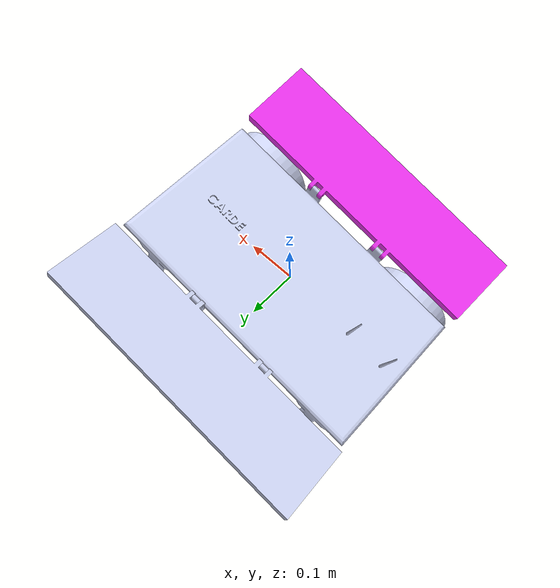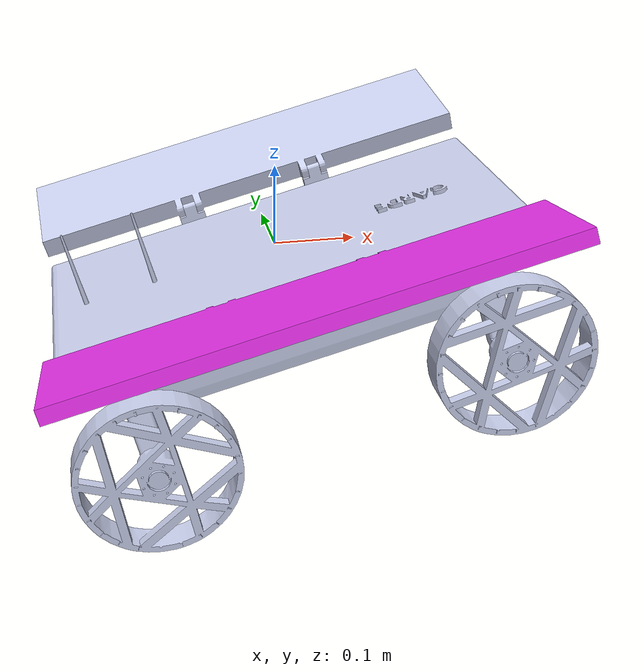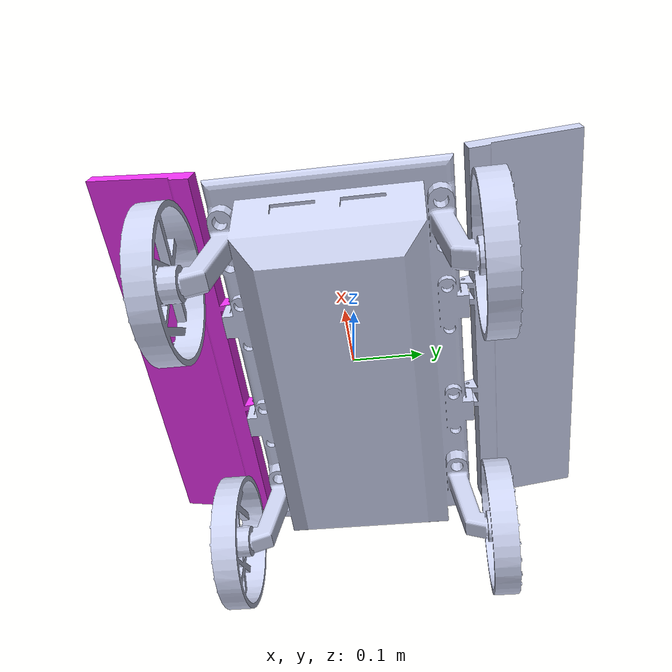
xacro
<?xml version="1.0" ?>

<robot name="omni_robot" xmlns:xacro="http://ros.org/wiki/xacro">
  <xacro:include filename="$(find robot_description)/robot/parts/lrf/lrf.xacro"/>
  <xacro:include filename="$(find robot_description)/robot/parts/camera/camera.xacro"/>
  <xacro:include filename="$(find robot_description)/robot/parts/imu/imu.urdf.xacro"/>

  <xacro:arg name="robot_name" default="robot_1"/>

  <link name="$(arg robot_name)_base_link">
    <inertial>
      <origin rpy="0.0 0 0" xyz="0.0172135177936195 -1.14385581850528E-05 -0.0536201606696958"/>
      <mass value="7.289342987569"/>
      <inertia ixx="0.145206537433384" ixy="1.43923471773063E-06" ixz="-0.0870870676509049" iyy="0.393381877550795" iyz="8.4523238199881E-07" izz="0.448115668671779"/>
    </inertial>
    <visual>
      <origin rpy="0 0 0" xyz="0 0 0"/>
      <geometry>
        <mesh filename="file:///home/ros2/multi_space_ros/src/robot_description/meshes/base_link.stl"/>
      </geometry>
      <material name="">
        <color rgba="0.792156862745098 0.819607843137255 0.933333333333333 1"/>
      </material>
    </visual>
    <collision>
      <origin rpy="0 0 0" xyz="0 0 0"/>
      <geometry>
        <mesh filename="file:///home/ros2/multi_space_ros/src/robot_description/meshes/base_link.stl"/>
      </geometry>
    </collision>
  </link>
  <link name="$(arg robot_name)_Left_front_wheel_link">
    <inertial>
      <origin rpy="0 0 0" xyz="4.10879071321979E-08 1.59579960877509E-08 -0.0134913589136655"/>
      <mass value="0.301609877533069"/>
      <inertia ixx="0.00092337705809606" ixy="-1.11287629204213E-10" ixz="-9.28718015940215E-11" iyy="0.000923377144551089" iyz="-3.60526237294195E-11" izz="0.00178709216193593"/>
    </inertial>
    <visual>
      <origin rpy="0 0 0" xyz="0 0 0"/>
      <geometry>
        <mesh filename="file:///home/ros2/multi_space_ros/src/robot_description/meshes/Left_front_wheel_link.stl"/>
      </geometry>
      <material name="">
        <color rgba="0.792156862745098 0.819607843137255 0.933333333333333 1"/>
      </material>
    </visual>
    <collision>
      <origin rpy="0 0 0" xyz="0 0 0"/>
      <geometry>
        <mesh filename="file:///home/ros2/multi_space_ros/src/robot_description/meshes/Left_front_wheel_link.stl"/>
      </geometry>
    </collision>
  </link>
  <joint name="$(arg robot_name)_Left_front_wheel_joint" type="continuous">
    <origin rpy="-1.5708 0 0" xyz="0.24547 0.20957 -0.081274"/>
    <parent link="$(arg robot_name)_base_link"/>
    <child link="$(arg robot_name)_Left_front_wheel_link"/>
    <axis xyz="0 0 -1"/>
    <limit effort="10" velocity="10"/>
    <dynamics damping="0.1" friction="0.1"/>
  </joint>
  <link name="$(arg robot_name)_Left_back_wheel_link">
    <inertial>
      <origin rpy="0 0 0" xyz="-4.6774E-09 4.3829E-08 -0.013491"/>
      <mass value="0.30161"/>
      <inertia ixx="0.00092338" ixy="7.4328E-11" ixz="1.0556E-11" iyy="0.00092338" iyz="-9.9063E-11" izz="0.0017871"/>
    </inertial>
    <visual>
      <origin rpy="0 0 0" xyz="0 0 0"/>
      <geometry>
        <mesh filename="file:///home/ros2/multi_space_ros/src/robot_description/meshes/Left_back_wheel_link.stl"/>
      </geometry>
      <material name="">
        <color rgba="0.79216 0.81961 0.93333 1"/>
      </material>
    </visual>
    <collision>
      <origin rpy="0 0 0" xyz="0 0 0"/>
      <geometry>
        <mesh filename="file:///home/ros2/multi_space_ros/src/robot_description/meshes/Left_back_wheel_link.stl"/>
      </geometry>
    </collision>
  </link>
  <joint name="$(arg robot_name)_Left_back_wheel_joint" type="continuous">
    <origin rpy="-1.5708 -0.2606 0" xyz="-0.17058 0.20957 -0.19222"/>
    <parent link="$(arg robot_name)_base_link"/>
    <child link="$(arg robot_name)_Left_back_wheel_link"/>
    <axis xyz="0 0 -1"/>
    <limit effort="10" velocity="10"/>
    <dynamics damping="0.1" friction="0.1"/>
  </joint>
  <link name="$(arg robot_name)_right_back_wheel_link">
    <inertial>
      <origin rpy="0 0 0" xyz="-4.33303539160157E-08 -8.08419348130585E-09 0.0134913589136655"/>
      <mass value="0.301609877533068"/>
      <inertia ixx="0.000923376982423818" ixy="1.07889777166057E-11" ixz="-9.79312028416197E-11" iyy="0.000923377220223332" iyz="-1.8287775345518E-11" izz="0.00178709216193593"/>
    </inertial>
    <visual>
      <origin rpy="0 0 0" xyz="0 0 0"/>
      <geometry>
        <mesh filename="file:///home/ros2/multi_space_ros/src/robot_description/meshes/right_back_wheel_link.stl"/>
      </geometry>
      <material name="">
        <color rgba="0.792156862745098 0.819607843137255 0.933333333333333 1"/>
      </material>
    </visual>
    <collision>
      <origin rpy="0 0 0" xyz="0 0 0"/>
      <geometry>
        <mesh filename="file:///home/ros2/multi_space_ros/src/robot_description/meshes/right_back_wheel_link.stl"/>
      </geometry>
    </collision>
  </link>
  <joint name="$(arg robot_name)_right_back_wheel_joint" type="continuous">
    <origin rpy="-1.5708 -0.2606 0" xyz="-0.17058 -0.20959 -0.19222"/>
    <parent link="$(arg robot_name)_base_link"/>
    <child link="$(arg robot_name)_right_back_wheel_link"/>
    <axis xyz="0 0 1"/>
    <limit effort="10" velocity="10"/>
    <dynamics damping="0.1" friction="0.1"/>
  </joint>
  <link name="$(arg robot_name)_right_front_wheel_link">
    <inertial>
      <origin rpy="0 0 0" xyz="3.59983871878189E-08 2.54359955841055E-08 0.0134913589136655"/>
      <mass value="0.301609877533068"/>
      <inertia ixx="0.00092337701568607" ixy="-8.31851667065812E-11" ixz="8.13532326388978E-11" iyy="0.000923377186961082" iyz="5.75031720480376E-11" izz="0.00178709216193594"/>
    </inertial>
    <visual>
      <origin rpy="0 0 0" xyz="0 0 0"/>
      <geometry>
        <mesh filename="file:///home/ros2/multi_space_ros/src/robot_description/meshes/right_front_wheel_link.stl"/>
      </geometry>
      <material name="">
        <color rgba="0.792156862745098 0.819607843137255 0.933333333333333 1"/>
      </material>
    </visual>
    <collision>
      <origin rpy="0 0 0" xyz="0 0 0"/>
      <geometry>
        <mesh filename="file:///home/ros2/multi_space_ros/src/robot_description/meshes/right_front_wheel_link.stl"/>
      </geometry>
    </collision>
  </link>
  <joint name="$(arg robot_name)_right_front_wheel_joint" type="continuous">
    <origin rpy="-1.5708 -0.2606 0" xyz="0.24547 -0.20959 -0.081274"/>
    <parent link="$(arg robot_name)_base_link"/>
    <child link="$(arg robot_name)_right_front_wheel_link"/>
    <axis xyz="0 0 1"/>
    <limit effort="10" velocity="10"/>
    <dynamics damping="0.1" friction="0.1"/>
  </joint>
  <link name="$(arg robot_name)_Solar1_link">
    <inertial>
      <origin rpy="0 0 0" xyz="-0.076412 -0.012053 -0.1054"/>
      <mass value="0.7"/>
      <inertia ixx="0.048188" ixy="0.00063738" ixz="-0.00016997" iyy="0.048138" iyz="-0.011901" izz="0.006682"/>
    </inertial>
    <visual>
      <origin rpy="0 0 0" xyz="0 0 0"/>
      <geometry>
        <mesh filename="file:///home/ros2/multi_space_ros/src/robot_description/meshes/Solar1_link.stl"/>
      </geometry>
      <material name="">
        <color rgba="0.9216 0.1961 0.93333 1"/>

      </material>
    </visual>
    <collision>
      <origin rpy="0 0 0" xyz="0 0 0"/>
      <geometry>
        <mesh filename="file:///home/ros2/multi_space_ros/src/robot_description/meshes/Solar1_link.stl"/>
      </geometry>
    </collision>
  </link>
  <joint name="$(arg robot_name)_Solar1_joint" type="revolute">
    <origin rpy="1.5708 0 1.5708" xyz="0.09857 -0.16877 0.041327"/>
    <parent link="$(arg robot_name)_base_link"/>
    <child link="$(arg robot_name)_Solar1_link"/>
    <axis xyz="0 0.25766 0.96623"/>
    <limit effort="10" lower="-2.96706" upper="0" velocity="0.05236"/>
    <dynamics damping="0.1" friction="0.1"/>
  </joint>
  <link name="$(arg robot_name)_Solar2_link">
    <inertial>
      <origin rpy="0 0 0" xyz="0.076412 -0.012053 -0.1054"/>
      <mass value="0.7"/>
      <inertia ixx="0.048188" ixy="-0.00063738" ixz="0.00016997" iyy="0.048138" iyz="-0.011901" izz="0.006682"/>
    </inertial>
    <visual>
      <origin rpy="0 0 0" xyz="0 0 0"/>
      <geometry>
        <mesh filename="file:///home/ros2/multi_space_ros/src/robot_description/meshes/Solar2_link.stl"/>
      </geometry>
      <material name="">
        <color rgba="0.79216 0.81961 0.93333 1"/>
      </material>
    </visual>
    <collision>
      <origin rpy="0 0 0" xyz="0 0 0"/>
      <geometry>
        <mesh filename="file:///home/ros2/multi_space_ros/src/robot_description/meshes/Solar2_link.stl"/>
      </geometry>
    </collision>
  </link>
  <joint name="$(arg robot_name)_Solar2_joint" type="revolute">
    <origin rpy="1.5708 0 1.5708" xyz="0.09857 0.16874 0.041327"/>
    <parent link="$(arg robot_name)_base_link"/>
    <child link="$(arg robot_name)_Solar2_link"/>
    <axis xyz="0 0.25766 0.96623"/>
    <limit effort="10" lower="0" upper="2.96706" velocity="0.0523599"/>
    <dynamics damping="0.1" friction="0.1"/>
  </joint>

  <xacro:lrf_v0 prefix = "$(arg robot_name)_front" parent="$(arg robot_name)_base_link">
	<origin xyz="0.21 0 0.03" rpy="0 -0.15 0"/>
  </xacro:lrf_v0>

  <xacro:lrf_gazebo_v0 prefix = "$(arg robot_name)_front" min_rad = "-0.84" max_rad = "0.84" min_range = "0.1" max_range = "10"/>

  <xacro:imu robot_namee = "$(arg robot_name)"/>

  <xacro:camera_rgb robot_name="$(arg robot_name)" parent_name="$(arg robot_name)_base_link" origin_xyz="0.1 0.0 0.2" camera_ROLL="0.0" camera_PITCH="0.0" camera_YAW="0.0"/>

  <gazebo reference="$(arg robot_name)_base_link">
    <material>Gazebo/Orange</material>
  </gazebo>
  <gazebo reference="$(arg robot_name)_Solar2_link">
    <material>Gazebo/Blue</material>
  </gazebo>
  <gazebo reference="$(arg robot_name)_Solar1_link">
    <material>Gazebo/Blue</material>
  </gazebo>
  <gazebo reference="$(arg robot_name)_Left_back_wheel_link">
    <material>Gazebo/Black</material>
  </gazebo>
  <gazebo reference="$(arg robot_name)_Left_front_wheel_link">
    <material>Gazebo/Black</material>
  </gazebo>
  <gazebo reference="$(arg robot_name)_right_back_wheel_link">
    <material>Gazebo/Black</material>
  </gazebo>
  <gazebo reference="$(arg robot_name)_right_front_wheel_link">
    <material>Gazebo/Black</material>
  </gazebo>

  <gazebo>
    <plugin filename="libgazebo_ros_joint_state_publisher.so" name="$(arg robot_name)_joint_state">
      <ros>
        <namespace>$(arg robot_name)</namespace>
      </ros>
      <update_rate>30</update_rate>
      <joint_name>$(arg robot_name)_Left_back_wheel_joint</joint_name>
      <joint_name>$(arg robot_name)_Left_front_wheel_joint</joint_name>
      <joint_name>$(arg robot_name)_right_back_wheel_joint</joint_name>
      <joint_name>$(arg robot_name)_right_front_wheel_joint</joint_name>
      <joint_name>$(arg robot_name)_Solar2_joint</joint_name>
      <joint_name>$(arg robot_name)_Solar1_joint</joint_name>

    </plugin>

    <plugin filename="libgazebo_ros_diff_drive.so" name="$(arg robot_name)_differential_drive_controller">
      <ros>
          <namespace>$(arg robot_name)</namespace>
          <argument>--ros-args --remap /cmd_vel:=/$(arg robot_name)/cmd_vel /odom:=/$(arg robot_name)/odom</argument>
      </ros>

      <legacyMode>false</legacyMode>

      <num_wheel_pairs>2</num_wheel_pairs>

      <right_joint>$(arg robot_name)_right_back_wheel_joint</right_joint>

      <left_joint>$(arg robot_name)_Left_front_wheel_joint</left_joint>
      <left_joint>$(arg robot_name)_Left_back_wheel_joint</left_joint>
      <right_joint>$(arg robot_name)_right_front_wheel_joint</right_joint>

      <wheel_separation>0.418</wheel_separation>
      <wheel_diameter>0.195</wheel_diameter>

      <!-- limits -->

      <publish_odom>true</publish_odom>
      <publish_odom_tf>true</publish_odom_tf>

      <odometry_frame>$(arg robot_name)_odom</odometry_frame>
      <robot_base_frame>$(arg robot_name)_base_link</robot_base_frame>

    </plugin>

  </gazebo>

</robot>

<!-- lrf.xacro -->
<robot xmlns:xacro="http://ros.org/wiki/xacro">
  <xacro:include filename="$(find robot_description)/robot/parts/lrf/lrf.gazebo"/>

  <xacro:macro name="lrf_v0" params="prefix parent *joint_origin">
	<joint name="${prefix}_lrf_joint" type="fixed">
	  <xacro:insert_block name="joint_origin"/>
	  <parent link="${parent}"/>
	  <child link="${prefix}_lrf_link"/>
	</joint>
	<link name="${prefix}_lrf_link">
	</link>
  </xacro:macro>

</robot>

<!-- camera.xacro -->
<robot xmlns:xacro="http://www.ros.org/wiki/xacro">

  <xacro:macro name="camera_rgb" params="robot_name parent_name origin_xyz camera_ROLL camera_PITCH camera_YAW">

    <link name="${robot_name}_rgb_camera_link_frame">
    </link>

    <joint name="${robot_name}_rgb_camera_link_frame_joint" type="fixed">
        <origin rpy="${camera_ROLL} ${camera_PITCH} ${camera_YAW}" xyz="${origin_xyz}"/>
        <parent link="${parent_name}" />
        <child link="${robot_name}_rgb_camera_link_frame" />
        <axis xyz="0 0 0"/>
    </joint>

    <gazebo reference="${robot_name}_rgb_camera_link_frame">
        <sensor name="${robot_name}_camera" type="depth">
          <update_rate>20</update_rate>

          <camera>
            <horizontal_fov>1.047198</horizontal_fov>
            <image>
              <width>640</width>
              <height>480</height>
              <format>R8G8B8</format>
            </image>
            <clip>
              <near>0.05</near>
              <far>3</far>
            </clip>
          </camera>
          <plugin name="${robot_name}_camera_controller" filename="libgazebo_ros_camera.so">
            <ros>
              <namespace>${robot_name}</namespace>
            </ros>

            <cameraName>${robot_name}_rgb_camera</cameraName>
            <imageTopicName>image_raw</imageTopicName>
            <cameraInfoTopicName>camera_info</cameraInfoTopicName>

            <depthImageTopicName>/depth/image_raw</depthImageTopicName>
            <depthImageInfoTopicName>/depth/camera_info</depthImageInfoTopicName>
            <pointCloudTopicName>/depth/points</pointCloudTopicName>

            <frameName>${robot_name}_rgb_camera_link_frame</frameName>

          </plugin>
        </sensor>
    </gazebo>

  </xacro:macro>

</robot>

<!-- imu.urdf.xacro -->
<robot xmlns:xacro="http://ros.org/wiki/xacro">
  <xacro:macro name="imu" params="robot_namee">
    <link name="${robot_namee}_imu_link"/>

    <joint name="${robot_namee}_imu_to_base_link" type="fixed">
      <parent link="${robot_namee}_base_link"/>
      <child link="${robot_namee}_imu_link"/>
      <origin xyz="0 0 0.2" rpy="0 0 0"/>
    </joint>

    <gazebo reference="${robot_namee}_imu_link">
      <gravity>true</gravity>
      <sensor name="${robot_namee}_imu_sensor" type="imu">
      <always_on>true</always_on>
        <update_rate>100</update_rate>
        <imu>
          <angular_velocity>
            <x>
              <noise type="gaussian">
                <mean>0.0</mean>
                <stddev>2e-4</stddev>
              </noise>
            </x>
            <y>
              <noise type="gaussian">
                <mean>0.0</mean>
                <stddev>2e-4</stddev>
              </noise>
            </y>
            <z>
              <noise type="gaussian">
                <mean>0.0</mean>
                <stddev>2e-4</stddev>
              </noise>
            </z>
          </angular_velocity>
          <linear_acceleration>
            <x>
              <noise type="gaussian">
                <mean>0.0</mean>
                <stddev>1.7e-2</stddev>
              </noise>
            </x>
            <y>
              <noise type="gaussian">
                <mean>0.0</mean>
                <stddev>1.7e-2</stddev>
              </noise>
            </y>
            <z>
              <noise type="gaussian">
                <mean>0.0</mean>
                <stddev>1.7e-2</stddev>
              </noise>
            </z>
          </linear_acceleration>
        </imu>

      <plugin filename="libgazebo_ros_imu_sensor.so" name="${robot_namee}_imu_plugin">
          <ros>

            <namespace>${robot_namee}</namespace> <!-- Correct namespace for each robot -->
            <remapping>~/out:=/${robot_namee}_imu/data</remapping>
          </ros>
          <topicName>${robot_namee}_imu/data</topicName>
          <bodyName>${robot_namee}_imu_link</bodyName>
          <frameName>${robot_namee}_imu_frame</frameName>
          <initialOrientationAsReference>false</initialOrientationAsReference>
      </plugin>
      <pose>0 0 0 0 0 0</pose>
      </sensor>
    </gazebo>
  </xacro:macro>
</robot>
